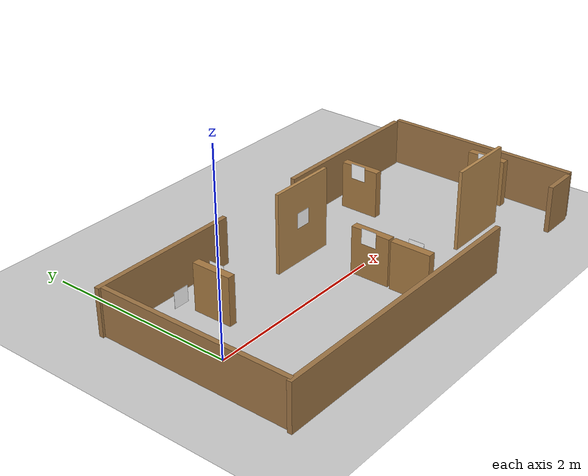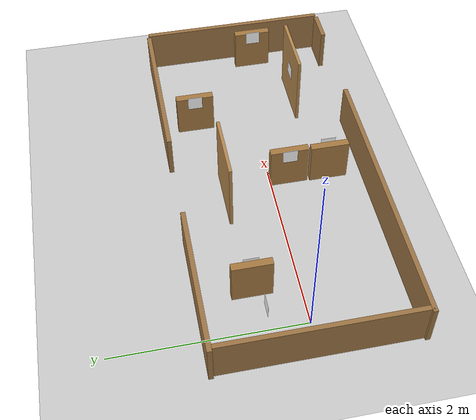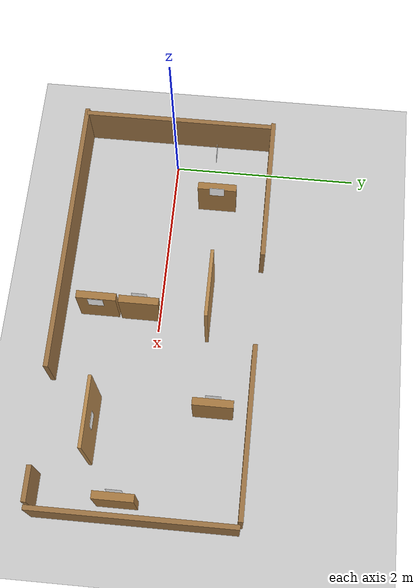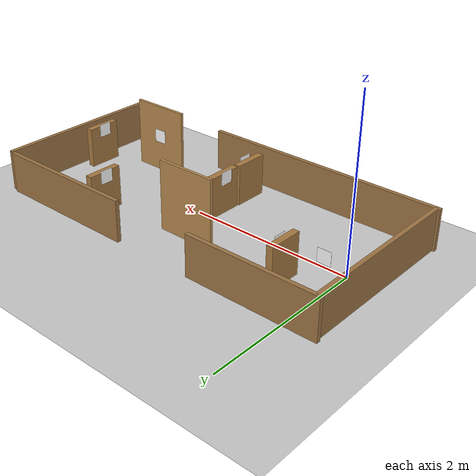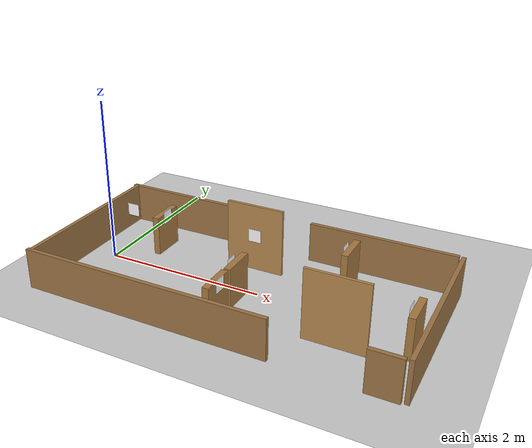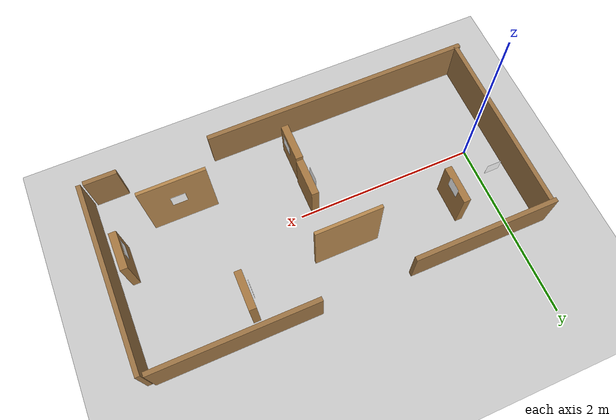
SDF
<sdf version="1.9">
    <world name="world_demo">
        <!-- Provides physics engine for interactions with objects -->
        <physics name="1ms" type="ode">
            <max_step_size>0.003</max_step_size>
            <real_time_update_rate>1000.0</real_time_update_rate>
            <real_time_factor>1.0</real_time_factor>
        </physics>
        <!-- Provides the necessary Gazebo plugins for the simulation -->
        <plugin filename="gz-sim-physics-system"
            name="gz::sim::systems::Physics" />
        <plugin filename="gz-sim-user-commands-system"
            name="gz::sim::systems::UserCommands" />
        <plugin filename="gz-sim-scene-broadcaster-system"
            name="gz::sim::systems::SceneBroadcaster" />

        <!-- Provides the necessary sensor plugins for the simulation -->
        <plugin filename="gz-sim-sensors-system"
            name="gz::sim::systems::Sensors">
            <render_engine>ogre2</render_engine>
        </plugin>
        <plugin filename="gz-sim-imu-system"
            name="gz::sim::systems::Imu" />

        <!-- Configures the graphical user interface for Gazebo -->
        <gui fullscreen="0">
            <plugin filename="MinimalScene" name="3D View">
                <gz-gui>
                    <title>3D View</title>
                    <property type="bool" key="showTitleBar">false</property>
                    <property type="string" key="state">docked</property>
                </gz-gui>

                <engine>ogre2</engine>
                <scene>scene</scene>
                <ambient_light>0.4 0.4 0.4</ambient_light>
                <background_color>0.8 0.8 0.8</background_color>
                <camera_pose>0 0 8 0 1.5708 0</camera_pose>
                <camera_clip>
                    <near>0.25</near>
                    <far>25000</far>
                </camera_clip>
            </plugin>

            <!-- Scene manager plugin -->
            <plugin filename="GzSceneManager" name="Scene Manager">
                <gz-gui>
                    <property key="resizable" type="bool">false</property>
                    <property key="width" type="double">5</property>
                    <property key="height" type="double">5</property>
                    <property key="state" type="string">floating</property>
                    <property key="showTitleBar" type="bool">false</property>
                </gz-gui>
            </plugin>

            <!-- World control buttons-->
            <plugin filename="WorldControl" name="World control">
                <gz-gui>
                    <title>World control</title>
                    <property type="bool" key="showTitleBar">false</property>
                    <property type="bool" key="resizable">false</property>
                    <property type="double" key="height">72</property>
                    <property type="double" key="width">121</property>
                    <property type="double" key="z">1</property>

                    <property type="string" key="state">floating</property>
                    <anchors target="3D View">
                        <line own="left" target="left" />
                        <line own="bottom" target="bottom" />
                    </anchors>
                </gz-gui>

                <play_pause>true</play_pause>
                <step>true</step>
                <start_paused>false</start_paused>
                <service>/world/world_demo/control</service>
                <stats_topic>/world/world_demo/stats</stats_topic>
            </plugin>

            <!-- World statistics -->
            <plugin filename="WorldStats" name="World stats">
                <gz-gui>
                    <title>World stats</title>
                    <property type="bool" key="showTitleBar">false</property>
                    <property type="bool" key="resizable">false</property>
                    <property type="double" key="height">110</property>
                    <property type="double" key="width">290</property>
                    <property type="double" key="z">1</property>

                    <property type="string" key="state">floating</property>
                    <anchors target="3D View">
                        <line own="right" target="right" />
                        <line own="bottom" target="bottom" />
                    </anchors>
                </gz-gui>

                <sim_time>true</sim_time>
                <real_time>true</real_time>
                <real_time_factor>true</real_time_factor>
                <iterations>true</iterations>
                <topic>/world/world_demo/stats</topic>
            </plugin>

            <!-- Interactive view control plugin -->
            <plugin filename="InteractiveViewControl" name="Interactive view control">
                <gz-gui>
                    <property key="resizable" type="bool">false</property>
                    <property key="width" type="double">5</property>
                    <property key="height" type="double">5</property>
                    <property key="state" type="string">floating</property>
                    <property key="showTitleBar" type="bool">false</property>
                </gz-gui>
            </plugin>

            <!-- Entitiy selection plugin -->
            <plugin filename="SelectEntities" name="Select Entities">
                <gz-gui>
                    <anchors target="Interactive view control">
                        <line own="right" target="left" />
                        <line own="top" target="top" />
                    </anchors>
                    <property key="resizable" type="bool">false</property>
                    <property key="width" type="double">5</property>
                    <property key="height" type="double">5</property>
                    <property key="state" type="string">floating</property>
                    <property key="showTitleBar" type="bool">false</property>
                </gz-gui>
            </plugin>
        </gui>

        <!-- Provide directional light for the simulation -->
        <light type="directional" name="sun">
            <cast_shadows>true</cast_shadows>
            <pose>0 0 10 0 0 0</pose>
            <diffuse>0.8 0.8 0.8 1</diffuse>
            <specular>0.2 0.2 0.2 1</specular>
            <attenuation>
                <range>1000</range>
                <constant>0.9</constant>
                <linear>0.01</linear>
                <quadratic>0.001</quadratic>
            </attenuation>
            <direction>-0.5 0.1 -0.9</direction>
        </light>

        <!-- Provides the floor for the robot -->
        <include>
            <uri>https://fuel.gazebosim.org/1.0/OpenRobotics/models/Ground Plane</uri>
        </include>

        <model name="cardboard_city_visual_walls">
            <static>true</static>
            <link name="link">
                <visual name="north_wall_west">
                    <pose>0.405 1.05 0.25 0 0 0</pose>
                    <geometry>
                        <box>
                            <size>1.61 0.05 0.50</size>
                        </box>
                    </geometry>
                    <material>
                        <ambient>0.62 0.46 0.27 1</ambient>
                        <diffuse>0.62 0.46 0.27 1</diffuse>
                    </material>
                </visual>
                <visual name="north_wall_east">
                    <pose>3.105 1.05 0.25 0 0 0</pose>
                    <geometry>
                        <box>
                            <size>1.79 0.05 0.50</size>
                        </box>
                    </geometry>
                    <material>
                        <ambient>0.62 0.46 0.27 1</ambient>
                        <diffuse>0.62 0.46 0.27 1</diffuse>
                    </material>
                </visual>
                <visual name="south_wall_west">
                    <pose>1.12 -1.05 0.25 0 0 0</pose>
                    <geometry>
                        <box>
                            <size>3.04 0.05 0.50</size>
                        </box>
                    </geometry>
                    <material>
                        <ambient>0.62 0.46 0.27 1</ambient>
                        <diffuse>0.62 0.46 0.27 1</diffuse>
                    </material>
                </visual>
                <visual name="south_wall_east">
                    <pose>3.82 -1.05 0.25 0 0 0</pose>
                    <geometry>
                        <box>
                            <size>0.36 0.05 0.50</size>
                        </box>
                    </geometry>
                    <material>
                        <ambient>0.62 0.46 0.27 1</ambient>
                        <diffuse>0.62 0.46 0.27 1</diffuse>
                    </material>
                </visual>
                <visual name="west_wall">
                    <pose>-0.35 0 0.25 0 0 0</pose>
                    <geometry>
                        <box>
                            <size>0.05 2.1 0.50</size>
                        </box>
                    </geometry>
                    <material>
                        <ambient>0.62 0.46 0.27 1</ambient>
                        <diffuse>0.62 0.46 0.27 1</diffuse>
                    </material>
                </visual>
                <visual name="east_wall">
                    <pose>4.05 0 0.25 0 0 0</pose>
                    <geometry>
                        <box>
                            <size>0.05 2.1 0.50</size>
                        </box>
                    </geometry>
                    <material>
                        <ambient>0.62 0.46 0.27 1</ambient>
                        <diffuse>0.62 0.46 0.27 1</diffuse>
                    </material>
                </visual>
            </link>
        </model>

        <model name="door_outward_panel">
            <static>true</static>
            <pose>3.14 -0.53 0.42 0 0 0</pose>
            <link name="link">
                <visual name="panel_visual">
                    <geometry>
                        <box>
                            <size>0.72 0.035 0.84</size>
                        </box>
                    </geometry>
                    <material>
                        <ambient>0.72 0.54 0.31 1</ambient>
                        <diffuse>0.72 0.54 0.31 1</diffuse>
                    </material>
                </visual>
            </link>
        </model>

        <model name="door_inward_panel">
            <static>true</static>
            <pose>1.71 0.53 0.42 0 0 0</pose>
            <link name="link">
                <visual name="panel_visual">
                    <geometry>
                        <box>
                            <size>0.72 0.035 0.84</size>
                        </box>
                    </geometry>
                    <material>
                        <ambient>0.72 0.54 0.31 1</ambient>
                        <diffuse>0.72 0.54 0.31 1</diffuse>
                    </material>
                </visual>
            </link>
        </model>

        <model name="cardboard_city_door_and_box_panels">
            <static>true</static>
            <link name="link">
                <visual name="box_goal_3">
                    <pose>0.45 0.495 0.25 0 0 0</pose>
                    <geometry>
                        <box>
                            <size>0.08 0.42 0.50</size>
                        </box>
                    </geometry>
                    <material>
                        <ambient>0.66 0.48 0.26 1</ambient>
                        <diffuse>0.66 0.48 0.26 1</diffuse>
                    </material>
                </visual>
                <visual name="box_goal_4">
                    <pose>1.84 -0.2 0.25 0 0 0</pose>
                    <geometry>
                        <box>
                            <size>0.08 0.42 0.50</size>
                        </box>
                    </geometry>
                    <material>
                        <ambient>0.66 0.48 0.26 1</ambient>
                        <diffuse>0.66 0.48 0.26 1</diffuse>
                    </material>
                </visual>
                <visual name="box_goal_5">
                    <pose>3.87 -0.2 0.25 0 0 0</pose>
                    <geometry>
                        <box>
                            <size>0.08 0.42 0.50</size>
                        </box>
                    </geometry>
                    <material>
                        <ambient>0.66 0.48 0.26 1</ambient>
                        <diffuse>0.66 0.48 0.26 1</diffuse>
                    </material>
                </visual>
                <visual name="box_goal_6">
                    <pose>1.83 -0.647 0.25 0 0 0</pose>
                    <geometry>
                        <box>
                            <size>0.08 0.42 0.50</size>
                        </box>
                    </geometry>
                    <material>
                        <ambient>0.66 0.48 0.26 1</ambient>
                        <diffuse>0.66 0.48 0.26 1</diffuse>
                    </material>
                </visual>
                <visual name="box_goal_7">
                    <pose>2.86 0.673 0.25 0 0 0</pose>
                    <geometry>
                        <box>
                            <size>0.08 0.42 0.50</size>
                        </box>
                    </geometry>
                    <material>
                        <ambient>0.66 0.48 0.26 1</ambient>
                        <diffuse>0.66 0.48 0.26 1</diffuse>
                    </material>
                </visual>
            </link>
        </model>

        <model name="cardboard_city_static_collisions">
            <static>true</static>
            <link name="link">
                <collision name="north_wall_west_collision">
                    <pose>0.405 1.05 0.25 0 0 0</pose>
                    <geometry>
                        <box>
                            <size>1.61 0.05 0.50</size>
                        </box>
                    </geometry>
                </collision>
                <collision name="north_wall_east_collision">
                    <pose>3.105 1.05 0.25 0 0 0</pose>
                    <geometry>
                        <box>
                            <size>1.79 0.05 0.50</size>
                        </box>
                    </geometry>
                </collision>
                <collision name="south_wall_west_collision">
                    <pose>1.12 -1.05 0.25 0 0 0</pose>
                    <geometry>
                        <box>
                            <size>3.04 0.05 0.50</size>
                        </box>
                    </geometry>
                </collision>
                <collision name="south_wall_east_collision">
                    <pose>3.82 -1.05 0.25 0 0 0</pose>
                    <geometry>
                        <box>
                            <size>0.36 0.05 0.50</size>
                        </box>
                    </geometry>
                </collision>
                <collision name="west_wall_collision">
                    <pose>-0.35 0 0.25 0 0 0</pose>
                    <geometry>
                        <box>
                            <size>0.05 2.1 0.50</size>
                        </box>
                    </geometry>
                </collision>
                <collision name="east_wall_collision">
                    <pose>4.05 0 0.25 0 0 0</pose>
                    <geometry>
                        <box>
                            <size>0.05 2.1 0.50</size>
                        </box>
                    </geometry>
                </collision>
                <collision name="box_goal_3_collision">
                    <pose>0.45 0.495 0.25 0 0 0</pose>
                    <geometry>
                        <box>
                            <size>0.08 0.42 0.50</size>
                        </box>
                    </geometry>
                </collision>
                <collision name="box_goal_4_collision">
                    <pose>1.84 -0.2 0.25 0 0 0</pose>
                    <geometry>
                        <box>
                            <size>0.08 0.42 0.50</size>
                        </box>
                    </geometry>
                </collision>
                <collision name="box_goal_5_collision">
                    <pose>3.87 -0.2 0.25 0 0 0</pose>
                    <geometry>
                        <box>
                            <size>0.08 0.42 0.50</size>
                        </box>
                    </geometry>
                </collision>
                <collision name="box_goal_6_collision">
                    <pose>1.83 -0.647 0.25 0 0 0</pose>
                    <geometry>
                        <box>
                            <size>0.08 0.42 0.50</size>
                        </box>
                    </geometry>
                </collision>
                <collision name="box_goal_7_collision">
                    <pose>2.86 0.673 0.25 0 0 0</pose>
                    <geometry>
                        <box>
                            <size>0.08 0.42 0.50</size>
                        </box>
                    </geometry>
                </collision>
            </link>
        </model>

        <include>
            <name>apriltag_home_0</name>
            <uri>model://tag36_11_00000</uri>
            <pose>0 0.45 0.45 0 1.5708 -1.5708</pose>
        </include>

        <include>
            <name>apriltag_door_outward_1</name>
            <uri>model://tag36_11_00001</uri>
            <pose>3.14 -0.5115 0.45 0 1.5708 1.5708</pose>
        </include>

        <include>
            <name>apriltag_door_inward_2</name>
            <uri>model://tag36_11_00002</uri>
            <pose>1.71 0.5115 0.45 0 1.5708 -1.5708</pose>
        </include>

        <include>
            <name>apriltag_goal_3</name>
            <uri>model://tag36_11_00003</uri>
            <pose>0.492 0.495 0.45 0 1.5708 0</pose>
        </include>

        <include>
            <name>apriltag_goal_4</name>
            <uri>model://tag36_11_00004</uri>
            <pose>1.78 -0.2 0.45 0 1.5708 3.1416</pose>
        </include>

        <include>
            <name>apriltag_goal_5</name>
            <uri>model://tag36_11_00005</uri>
            <pose>3.81 -0.2 0.45 0 1.5708 3.1416</pose>
        </include>

        <include>
            <name>apriltag_goal_6</name>
            <uri>model://tag36_11_00006</uri>
            <pose>1.89 -0.647 0.45 0 1.5708 0</pose>
        </include>

        <include>
            <name>apriltag_goal_7</name>
            <uri>model://tag36_11_00007</uri>
            <pose>2.80 0.673 0.45 0 1.5708 3.1416</pose>
        </include>

    </world>
</sdf>

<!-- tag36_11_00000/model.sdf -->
<sdf version="1.9">
  <model name="tag36_11_00000">
    <static>true</static>
    <link name="link">
      <visual name="tag_visual">
        <cast_shadows>false</cast_shadows>
        <geometry>
          <box>
            <size>0.162 0.162 0.002</size>
          </box>
        </geometry>
        <material>
          <ambient>1 1 1 1</ambient>
          <diffuse>1 1 1 1</diffuse>
          <specular>0.1 0.1 0.1 1</specular>
          <pbr>
            <metal>
              <albedo_map>materials/textures/tag36_11_00000.png</albedo_map>
              <roughness>1.0</roughness>
              <metalness>0.0</metalness>
            </metal>
          </pbr>
        </material>
      </visual>
      <collision name="tag_collision">
        <geometry>
          <box>
            <size>0.162 0.162 0.002</size>
          </box>
        </geometry>
      </collision>
    </link>
  </model>
</sdf>

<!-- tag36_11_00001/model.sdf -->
<sdf version="1.9">
  <model name="tag36_11_00001">
    <static>true</static>
    <link name="link">
      <visual name="tag_visual">
        <cast_shadows>false</cast_shadows>
        <geometry>
          <box>
            <size>0.162 0.162 0.002</size>
          </box>
        </geometry>
        <material>
          <ambient>1 1 1 1</ambient>
          <diffuse>1 1 1 1</diffuse>
          <specular>0.1 0.1 0.1 1</specular>
          <pbr>
            <metal>
              <albedo_map>materials/textures/tag36_11_00001.png</albedo_map>
              <roughness>1.0</roughness>
              <metalness>0.0</metalness>
            </metal>
          </pbr>
        </material>
      </visual>
      <collision name="tag_collision">
        <geometry>
          <box>
            <size>0.162 0.162 0.002</size>
          </box>
        </geometry>
      </collision>
    </link>
  </model>
</sdf>

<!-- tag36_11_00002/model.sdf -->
<sdf version="1.9">
  <model name="tag36_11_00002">
    <static>true</static>
    <link name="link">
      <visual name="tag_visual">
        <cast_shadows>false</cast_shadows>
        <geometry>
          <box>
            <size>0.162 0.162 0.002</size>
          </box>
        </geometry>
        <material>
          <ambient>1 1 1 1</ambient>
          <diffuse>1 1 1 1</diffuse>
          <specular>0.1 0.1 0.1 1</specular>
          <pbr>
            <metal>
              <albedo_map>materials/textures/tag36_11_00002.png</albedo_map>
              <roughness>1.0</roughness>
              <metalness>0.0</metalness>
            </metal>
          </pbr>
        </material>
      </visual>
      <collision name="tag_collision">
        <geometry>
          <box>
            <size>0.162 0.162 0.002</size>
          </box>
        </geometry>
      </collision>
    </link>
  </model>
</sdf>

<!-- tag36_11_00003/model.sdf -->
<sdf version="1.9">
  <model name="tag36_11_00003">
    <static>true</static>
    <link name="link">
      <visual name="tag_visual">
        <cast_shadows>false</cast_shadows>
        <geometry>
          <box>
            <size>0.162 0.162 0.002</size>
          </box>
        </geometry>
        <material>
          <ambient>1 1 1 1</ambient>
          <diffuse>1 1 1 1</diffuse>
          <specular>0.1 0.1 0.1 1</specular>
          <pbr>
            <metal>
              <albedo_map>materials/textures/tag36_11_00003.png</albedo_map>
              <roughness>1.0</roughness>
              <metalness>0.0</metalness>
            </metal>
          </pbr>
        </material>
      </visual>
      <collision name="tag_collision">
        <geometry>
          <box>
            <size>0.162 0.162 0.002</size>
          </box>
        </geometry>
      </collision>
    </link>
  </model>
</sdf>

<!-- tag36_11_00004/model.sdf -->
<sdf version="1.9">
  <model name="tag36_11_00004">
    <static>true</static>
    <link name="link">
      <visual name="tag_visual">
        <cast_shadows>false</cast_shadows>
        <geometry>
          <box>
            <size>0.162 0.162 0.002</size>
          </box>
        </geometry>
        <material>
          <ambient>1 1 1 1</ambient>
          <diffuse>1 1 1 1</diffuse>
          <specular>0.1 0.1 0.1 1</specular>
          <pbr>
            <metal>
              <albedo_map>materials/textures/tag36_11_00004.png</albedo_map>
              <roughness>1.0</roughness>
              <metalness>0.0</metalness>
            </metal>
          </pbr>
        </material>
      </visual>
      <collision name="tag_collision">
        <geometry>
          <box>
            <size>0.162 0.162 0.002</size>
          </box>
        </geometry>
      </collision>
    </link>
  </model>
</sdf>

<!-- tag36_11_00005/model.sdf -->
<sdf version="1.9">
  <model name="tag36_11_00005">
    <static>true</static>
    <link name="link">
      <visual name="tag_visual">
        <cast_shadows>false</cast_shadows>
        <geometry>
          <box>
            <size>0.162 0.162 0.002</size>
          </box>
        </geometry>
        <material>
          <ambient>1 1 1 1</ambient>
          <diffuse>1 1 1 1</diffuse>
          <specular>0.1 0.1 0.1 1</specular>
          <pbr>
            <metal>
              <albedo_map>materials/textures/tag36_11_00005.png</albedo_map>
              <roughness>1.0</roughness>
              <metalness>0.0</metalness>
            </metal>
          </pbr>
        </material>
      </visual>
      <collision name="tag_collision">
        <geometry>
          <box>
            <size>0.162 0.162 0.002</size>
          </box>
        </geometry>
      </collision>
    </link>
  </model>
</sdf>

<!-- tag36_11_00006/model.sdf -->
<sdf version="1.9">
  <model name="tag36_11_00006">
    <static>true</static>
    <link name="link">
      <visual name="tag_visual">
        <cast_shadows>false</cast_shadows>
        <geometry>
          <box>
            <size>0.162 0.162 0.002</size>
          </box>
        </geometry>
        <material>
          <ambient>1 1 1 1</ambient>
          <diffuse>1 1 1 1</diffuse>
          <specular>0.1 0.1 0.1 1</specular>
          <pbr>
            <metal>
              <albedo_map>materials/textures/tag36_11_00006.png</albedo_map>
              <roughness>1.0</roughness>
              <metalness>0.0</metalness>
            </metal>
          </pbr>
        </material>
      </visual>
      <collision name="tag_collision">
        <geometry>
          <box>
            <size>0.162 0.162 0.002</size>
          </box>
        </geometry>
      </collision>
    </link>
  </model>
</sdf>

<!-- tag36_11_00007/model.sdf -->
<sdf version="1.9">
  <model name="tag36_11_00007">
    <static>true</static>
    <link name="link">
      <visual name="tag_visual">
        <cast_shadows>false</cast_shadows>
        <geometry>
          <box>
            <size>0.162 0.162 0.002</size>
          </box>
        </geometry>
        <material>
          <ambient>1 1 1 1</ambient>
          <diffuse>1 1 1 1</diffuse>
          <specular>0.1 0.1 0.1 1</specular>
          <pbr>
            <metal>
              <albedo_map>materials/textures/tag36_11_00007.png</albedo_map>
              <roughness>1.0</roughness>
              <metalness>0.0</metalness>
            </metal>
          </pbr>
        </material>
      </visual>
      <collision name="tag_collision">
        <geometry>
          <box>
            <size>0.162 0.162 0.002</size>
          </box>
        </geometry>
      </collision>
    </link>
  </model>
</sdf>
